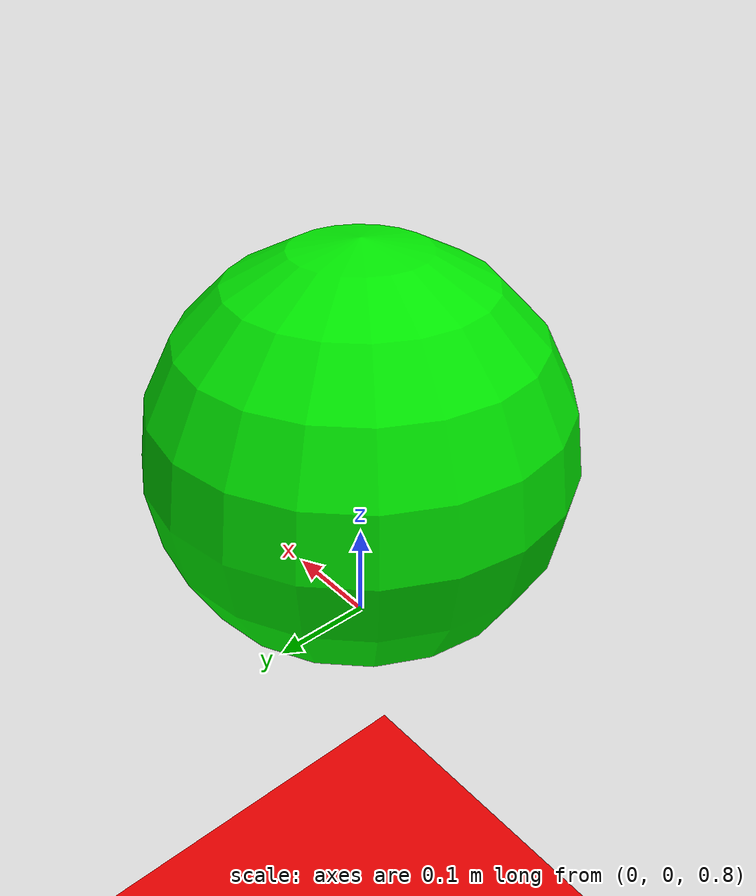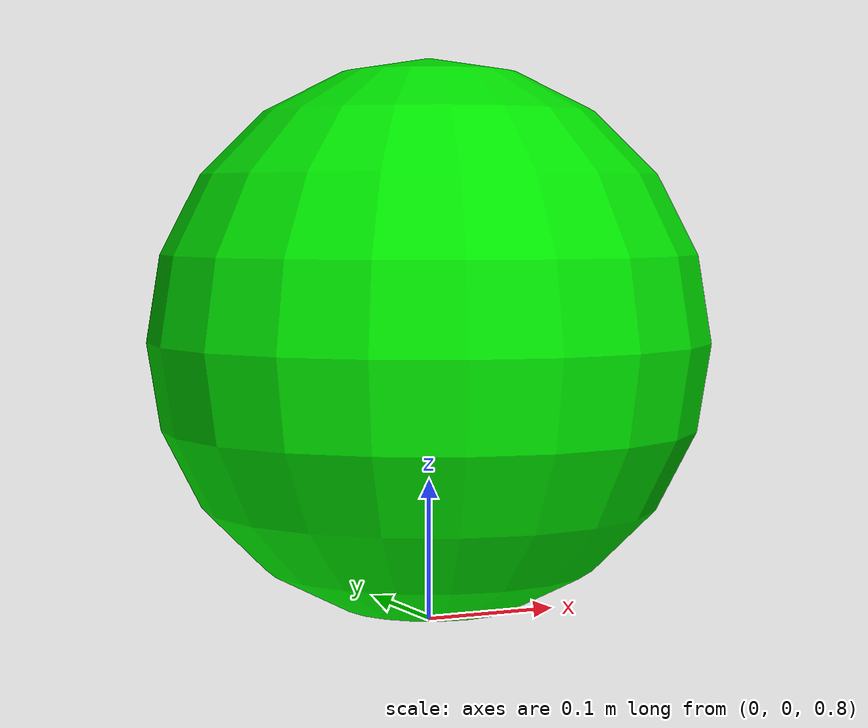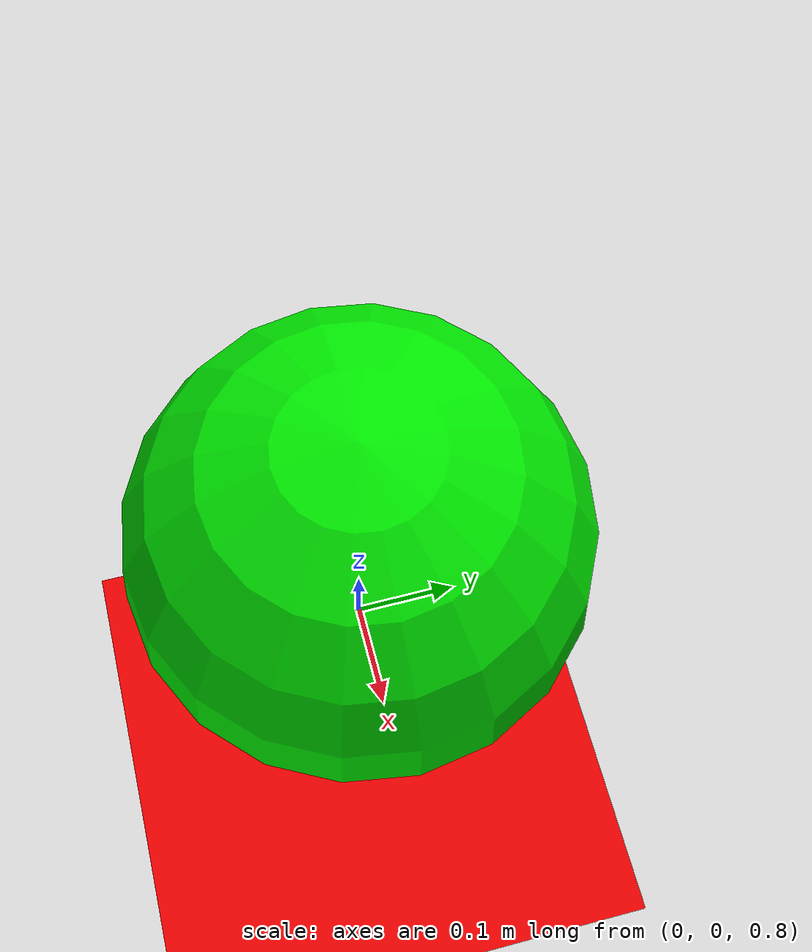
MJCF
<mujoco>
  <worldbody>
        <light diffuse=".5 .5 .5" pos="0 0 3" dir="0 0 -1" />
    <geom type="plane" size="10 1 0.1" rgba=".9 0 0 1" />
    <body pos="0 0 1">
      <joint type="free" name="hhh" />
      <geom type="sphere" size=".2" rgba="0 .9 0 1" />
    </body>
  <body pos="0 0 1" name="333"><joint type="free" name="111" /><geom type="sphere" size=".2" rgba="0 .9 0 1" /></body></worldbody>
</mujoco>
